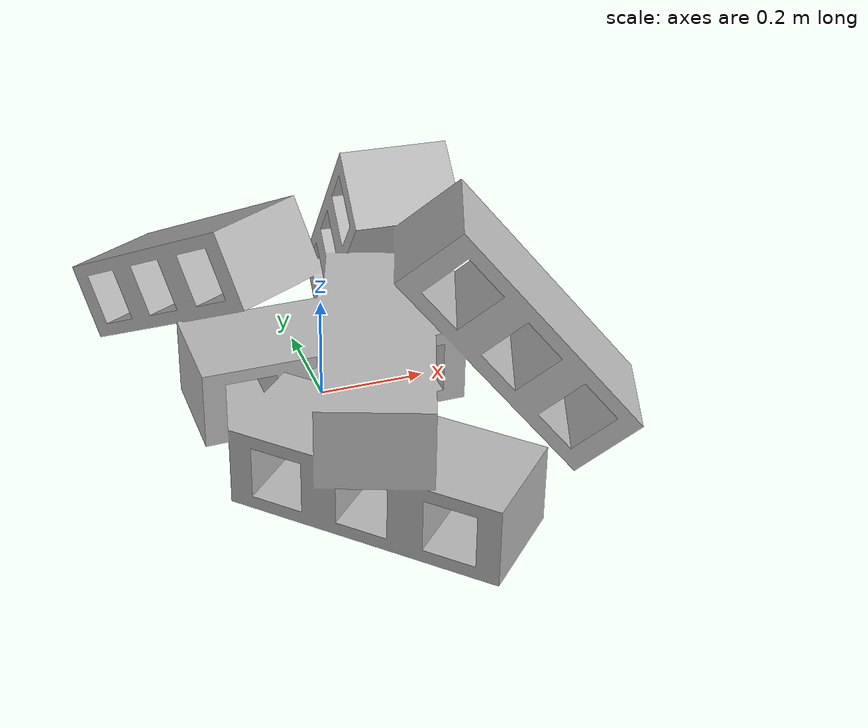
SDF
<?xml version='1.0'?>
<sdf version='1.6'>
  <model name='brick_pile2'>
    <link name='body'>
	  <inertial>
        <mass>15.0</mass>
        <pose frame=''>0 0 0 0 0 0</pose>
        <inertia>
      	  <ixx> 0.228125 </ixx>
      	  <ixy> 0.0 </ixy>
      	  <ixz> 0.0 </ixz>
      	  <iyy> 0.073249997 </iyy>
      	  <iyz> 0.0 </iyz>
      	  <izz> 0.24512499 </izz>
        </inertia>
      </inertial>
      <pose frame=''>0 0 0 0 0 0</pose>
      <self_collide>0</self_collide>
      <kinematic>0</kinematic>
      <gravity>1</gravity>
      <visual name='visual'>
        <geometry>
          <mesh>
            <uri>model://BrickPile2.dae</uri>
          </mesh>
        </geometry>
		<meta> <layer> 1 </layer></meta>
      </visual>
      <collision name='collision_0'>
        <laser_retro>0</laser_retro>
        <max_contacts>10</max_contacts>
        <pose frame=''>0 0 0 0 -0 0</pose>
        <geometry>
          <mesh>
            <uri>model://BrickPile2.dae</uri>
            <scale>1 1 1</scale>
          </mesh>
        </geometry>
		<surface>
          <friction>
            <ode>
              <mu>0.4</mu>
              <mu2>0.4</mu2>
              <fdir1>0 0 0</fdir1>
              <slip1>0</slip1>
              <slip2>0</slip2>
            </ode>
            <torsional>
              <coefficient>1</coefficient>
              <patch_radius>0</patch_radius>
              <surface_radius>0</surface_radius>
              <use_patch_radius>1</use_patch_radius>
              <ode>
                <slip>0</slip>
              </ode>
            </torsional>
          </friction>
        </surface>
      </collision>
    </link>
    <static>true</static>
  </model>
</sdf>
